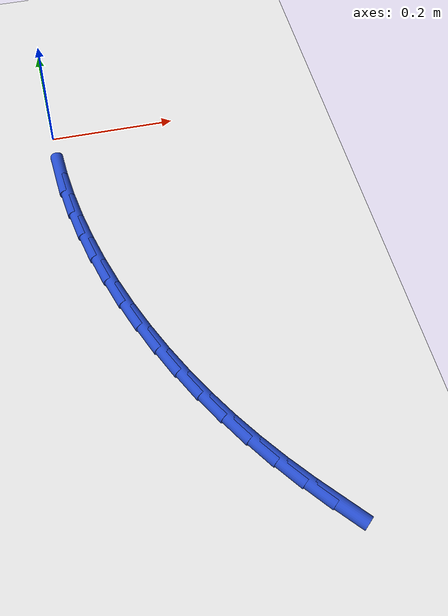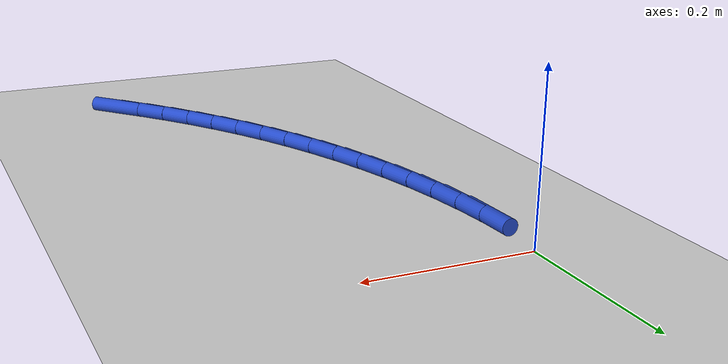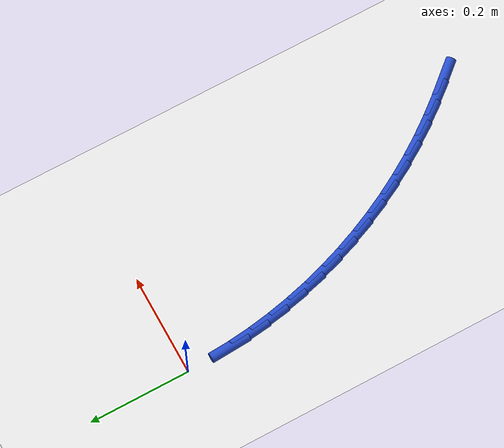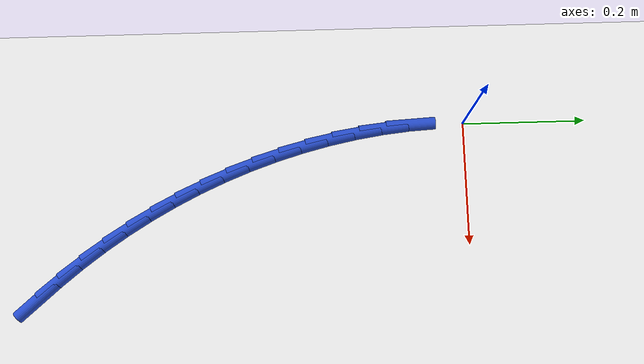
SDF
<sdf version="1.6">
 <world name="default">
  <model name="ground_plane">
   <static>1</static>
   <link name="link">
    <collision name="collision">
     <geometry><plane><normal>0 0 1</normal><size>100 100</size></plane></geometry>
     <surface><friction><ode><mu>100</mu><mu2>50</mu2></ode></friction></surface>
    </collision>
    <visual name="visual">
     <cast_shadows>0</cast_shadows>
     <geometry><plane><normal>0 0 1</normal><size>100 100</size></plane></geometry>
     <material>
      <script><uri>file://media/materials/scripts/gazebo.material</uri><name>Gazebo/WhiteGlow</name></script>
     </material>
    </visual>
   </link>
  </model>
  <model name="line">
   <link name="link_173">
    <pose>0.2706509588171488 -0.6855342174916106 0.01 0 1.57 -0.8528075789995085</pose>
    <collision name="collision">
     <geometry><cylinder><radius>0.01</radius><length>0.08</length></cylinder></geometry>
    </collision>
    <visual name="visual">
     <material>
      <script><name>Gazebo/Blue</name><uri>file://media/materials/scripts/gazebo.material</uri></script>
     </material>
     <geometry><cylinder><radius>0.01</radius><length>0.08</length></cylinder></geometry>
    </visual>
   </link>
   <link name="link_174">
    <pose>0.2416345540319642 -0.6523162651482222 0.01 0 1.57 -0.8891444615625497</pose>
    <collision name="collision">
     <geometry><cylinder><radius>0.01</radius><length>0.08</length></cylinder></geometry>
    </collision>
    <visual name="visual">
     <material>
      <script><name>Gazebo/Blue</name><uri>file://media/materials/scripts/gazebo.material</uri></script>
     </material>
     <geometry><cylinder><radius>0.01</radius><length>0.08</length></cylinder></geometry>
    </visual>
   </link>
   <link name="link_175">
    <pose>0.21386494572202622 -0.6180918292004809 0.01 0 1.57 -0.9306496303095398</pose>
    <collision name="collision">
     <geometry><cylinder><radius>0.01</radius><length>0.08</length></cylinder></geometry>
    </collision>
    <visual name="visual">
     <material>
      <script><name>Gazebo/Blue</name><uri>file://media/materials/scripts/gazebo.material</uri></script>
     </material>
     <geometry><cylinder><radius>0.01</radius><length>0.08</length></cylinder></geometry>
    </visual>
   </link>
   <link name="link_176">
    <pose>0.18752321185616586 -0.5827229664201337 0.01 0 1.57 -0.9735203337225485</pose>
    <collision name="collision">
     <geometry><cylinder><radius>0.01</radius><length>0.08</length></cylinder></geometry>
    </collision>
    <visual name="visual">
     <material>
      <script><name>Gazebo/Blue</name><uri>file://media/materials/scripts/gazebo.material</uri></script>
     </material>
     <geometry><cylinder><radius>0.01</radius><length>0.08</length></cylinder></geometry>
    </visual>
   </link>
   <link name="link_177">
    <pose>0.16268874216124063 -0.546209488308585 0.01 0 1.57 -1.016477635696368</pose>
    <collision name="collision">
     <geometry><cylinder><radius>0.01</radius><length>0.08</length></cylinder></geometry>
    </collision>
    <visual name="visual">
     <material>
      <script><name>Gazebo/Blue</name><uri>file://media/materials/scripts/gazebo.material</uri></script>
     </material>
     <geometry><cylinder><radius>0.01</radius><length>0.08</length></cylinder></geometry>
    </visual>
   </link>
   <link name="link_178">
    <pose>0.13940555377807035 -0.508599124798439 0.01 0 1.57 -1.0595477984074522</pose>
    <collision name="collision">
     <geometry><cylinder><radius>0.01</radius><length>0.08</length></cylinder></geometry>
    </collision>
    <visual name="visual">
     <material>
      <script><name>Gazebo/Blue</name><uri>file://media/materials/scripts/gazebo.material</uri></script>
     </material>
     <geometry><cylinder><radius>0.01</radius><length>0.08</length></cylinder></geometry>
    </visual>
   </link>
   <link name="link_179">
    <pose>0.11771762815357116 -0.46993965417601397 0.01 0 1.57 -1.1027554466936282</pose>
    <collision name="collision">
     <geometry><cylinder><radius>0.01</radius><length>0.08</length></cylinder></geometry>
    </collision>
    <visual name="visual">
     <material>
      <script><name>Gazebo/Blue</name><uri>file://media/materials/scripts/gazebo.material</uri></script>
     </material>
     <geometry><cylinder><radius>0.01</radius><length>0.08</length></cylinder></geometry>
    </visual>
   </link>
   <link name="link_180">
    <pose>0.09766894673465788 -0.4302788547276255 0.01 0 1.57 -1.146121607921758</pose>
    <collision name="collision">
     <geometry><cylinder><radius>0.01</radius><length>0.08</length></cylinder></geometry>
    </collision>
    <visual name="visual">
     <material>
      <script><name>Gazebo/Blue</name><uri>file://media/materials/scripts/gazebo.material</uri></script>
     </material>
     <geometry><cylinder><radius>0.01</radius><length>0.08</length></cylinder></geometry>
    </visual>
   </link>
   <link name="link_181">
    <pose>0.07930349096824676 -0.3896645047395922 0.01 0 1.57 -1.189663078854583</pose>
    <collision name="collision">
     <geometry><cylinder><radius>0.01</radius><length>0.08</length></cylinder></geometry>
    </collision>
    <visual name="visual">
     <material>
      <script><name>Gazebo/Blue</name><uri>file://media/materials/scripts/gazebo.material</uri></script>
     </material>
     <geometry><cylinder><radius>0.01</radius><length>0.08</length></cylinder></geometry>
    </visual>
   </link>
   <link name="link_182">
    <pose>0.06266524230125359 -0.34814438249823126 0.01 0 1.57 -1.2333880839944746</pose>
    <collision name="collision">
     <geometry><cylinder><radius>0.01</radius><length>0.08</length></cylinder></geometry>
    </collision>
    <visual name="visual">
     <material>
      <script><name>Gazebo/Blue</name><uri>file://media/materials/scripts/gazebo.material</uri></script>
     </material>
     <geometry><cylinder><radius>0.01</radius><length>0.08</length></cylinder></geometry>
    </visual>
   </link>
   <link name="link_183">
    <pose>0.047798816633603275 -0.3057685822904739 0.01 0 1.57 -1.2772680307269033</pose>
    <collision name="collision">
     <geometry><cylinder><radius>0.01</radius><length>0.08</length></cylinder></geometry>
    </collision>
    <visual name="visual">
     <material>
      <script><name>Gazebo/Blue</name><uri>file://media/materials/scripts/gazebo.material</uri></script>
     </material>
     <geometry><cylinder><radius>0.01</radius><length>0.08</length></cylinder></geometry>
    </visual>
   </link>
   <link name="link_184">
    <pose>0.03476808215177456 -0.26265747674826173 0.01 0 1.57 -1.3215585091712985</pose>
    <collision name="collision">
     <geometry><cylinder><radius>0.01</radius><length>0.08</length></cylinder></geometry>
    </collision>
    <visual name="visual">
     <material>
      <script><name>Gazebo/Blue</name><uri>file://media/materials/scripts/gazebo.material</uri></script>
     </material>
     <geometry><cylinder><radius>0.01</radius><length>0.08</length></cylinder></geometry>
    </visual>
   </link>
   <link name="link_185">
    <pose>0.023659170722964126 -0.21901270961023478 0.01 0 1.57 -1.3667345640575976</pose>
    <collision name="collision">
     <geometry><cylinder><radius>0.01</radius><length>0.08</length></cylinder></geometry>
    </collision>
    <visual name="visual">
     <material>
      <script><name>Gazebo/Blue</name><uri>file://media/materials/scripts/gazebo.material</uri></script>
     </material>
     <geometry><cylinder><radius>0.01</radius><length>0.08</length></cylinder></geometry>
    </visual>
   </link>
   <link name="link_186">
    <pose>0.014559454936481097 -0.17504045373402594 0.01 0 1.57 -1.4132872542213781</pose>
    <collision name="collision">
     <geometry><cylinder><radius>0.01</radius><length>0.08</length></cylinder></geometry>
    </collision>
    <visual name="visual">
     <material>
      <script><name>Gazebo/Blue</name><uri>file://media/materials/scripts/gazebo.material</uri></script>
     </material>
     <geometry><cylinder><radius>0.01</radius><length>0.08</length></cylinder></geometry>
    </visual>
   </link>
   <link name="link_187">
    <pose>0.007556307381634078 -0.13094688197726548 0.01 0 1.57 -1.4617251804149696</pose>
    <collision name="collision">
     <geometry><cylinder><radius>0.01</radius><length>0.08</length></cylinder></geometry>
    </collision>
    <visual name="visual">
     <material>
      <script><name>Gazebo/Blue</name><uri>file://media/materials/scripts/gazebo.material</uri></script>
     </material>
     <geometry><cylinder><radius>0.01</radius><length>0.08</length></cylinder></geometry>
    </visual>
   </link>
   <link name="link_188">
    <pose>0.0027371006477322386 -0.08693816719758629 0.01 0 1.57 -1.512581569040553</pose>
    <collision name="collision">
     <geometry><cylinder><radius>0.01</radius><length>0.08</length></cylinder></geometry>
    </collision>
    <visual name="visual">
     <material>
      <script><name>Gazebo/Blue</name><uri>file://media/materials/scripts/gazebo.material</uri></script>
     </material>
     <geometry><cylinder><radius>0.01</radius><length>0.08</length></cylinder></geometry>
    </visual>
   </link>
  </model>
 </world>
</sdf>
